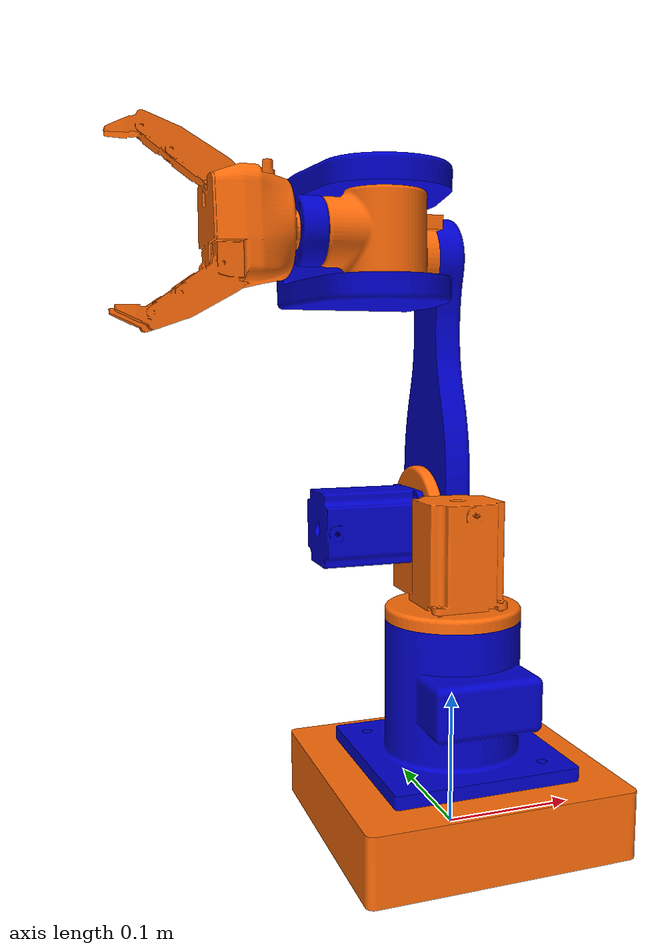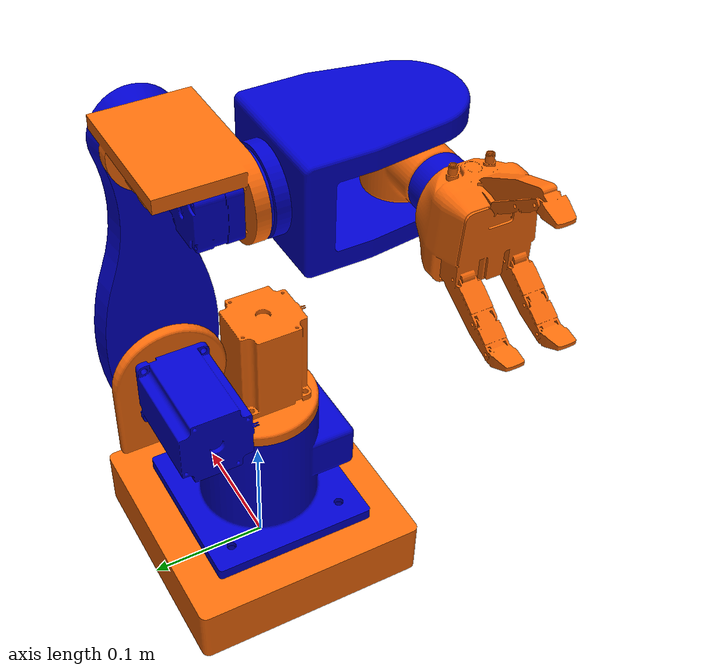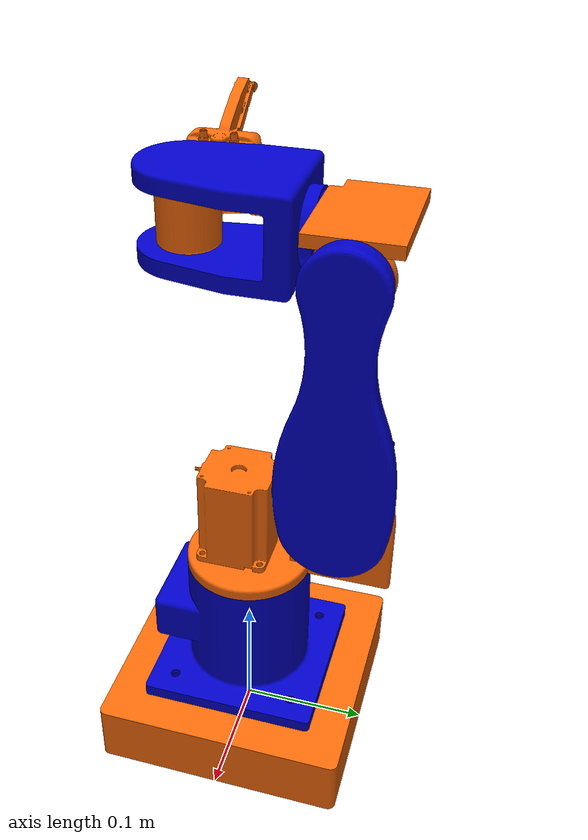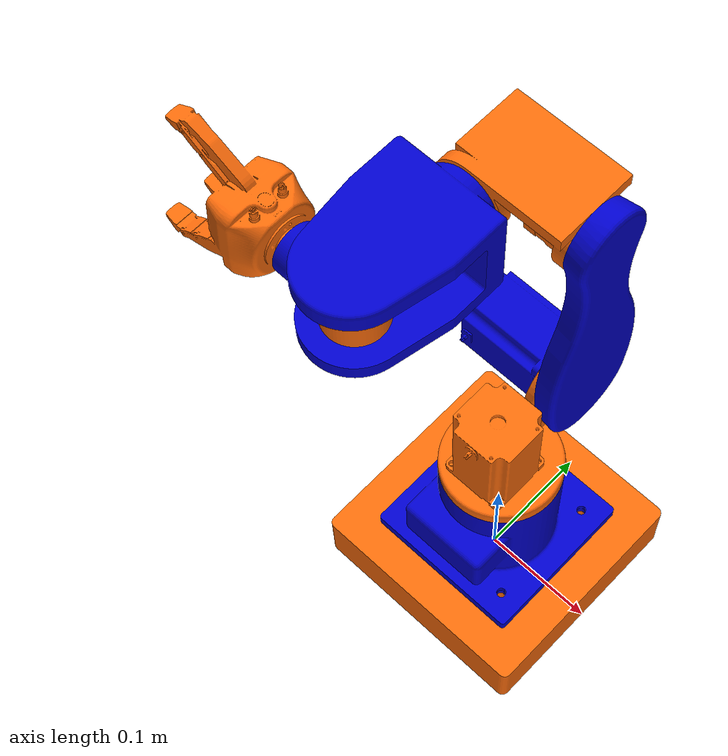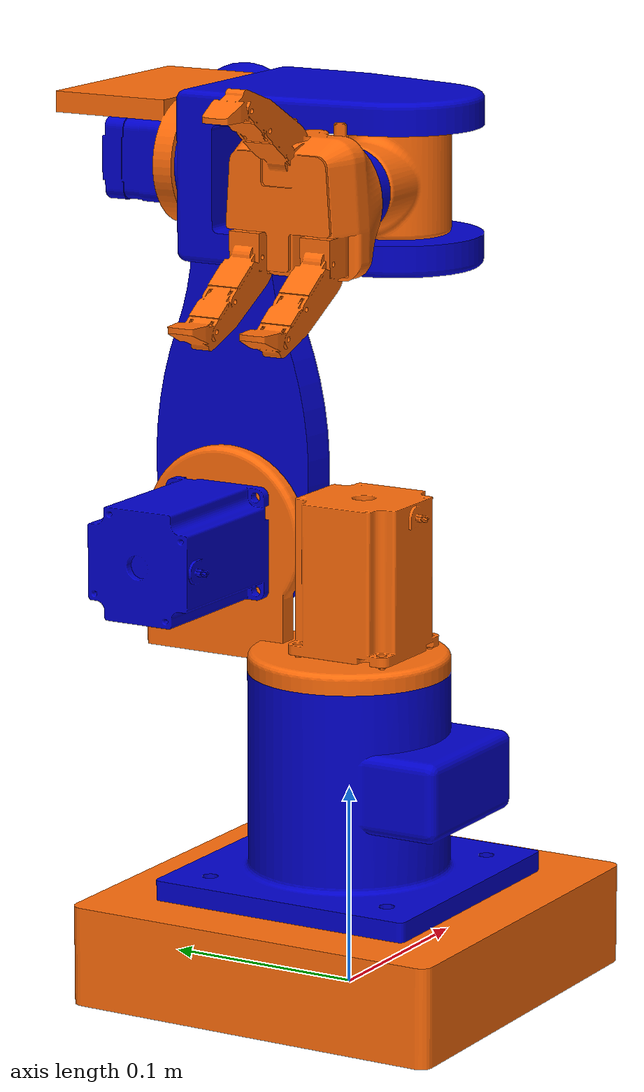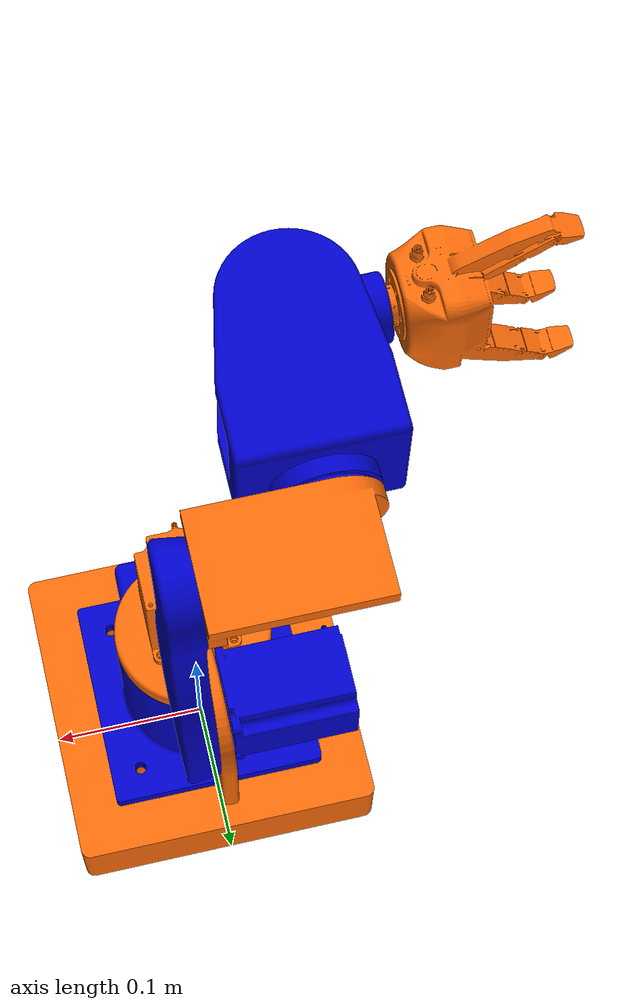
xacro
<?xml version="1.0" ?>
<robot name="modelo" xmlns:xacro="http://www.ros.org/wiki/xacro">

<xacro:include filename="$(find modelo_description)/urdf/materials.xacro" />
<xacro:include filename="$(find modelo_description)/urdf/transmission.xacro" />
<xacro:include filename="$(find modelo_description)/urdf/gazebo.xacro" />
<xacro:include filename="$(find modelo_description)/urdf/gazebo_properties.xacro" />
<link name="base_link">
  <inertial>
    <origin rpy="0 0 0" xyz="1.3695408551062038e-15 0.0 0.02497017641605957"/>
    <mass value="2.111798"/>
    <inertia ixx="0.007474" ixy="0" ixz="0" iyy="0.007474" iyz="0" izz="0.01407"/>
  </inertial>
  <visual>
    <origin rpy="0 0 0" xyz="0 0 0"/>
    <geometry>
      <mesh filename="package://modelo_description/meshes/base_link.stl" scale="0.001 0.001 0.001"/>
    </geometry>
    <material name="orange"/>
  </visual>
  <collision>
    <origin rpy="0 0 0" xyz="0 0 0"/>
    <geometry>
      <mesh filename="package://modelo_description/meshes/base_link.stl" scale="0.001 0.001 0.001"/>
    </geometry>
  </collision>
</link>

<link name="link_1">
  <inertial>
    <origin rpy="0 0 0" xyz="-5.047483736354417e-10 -0.004392610218652343 0.04871320580870557"/>
    <mass value="1.102554"/>
    <inertia ixx="0.002237" ixy="0" ixz="0" iyy="0.002034" iyz="0.00005466295" izz="0.001997"/>
  </inertial>
  <visual>
    <origin rpy="0 0 0" xyz="-0.0 -0.0 -0.05"/>
    <geometry>
      <mesh filename="package://modelo_description/meshes/link_1.stl" scale="0.001 0.001 0.001"/>
    </geometry>
    <material name="blue"/>
  </visual>
  <collision>
    <origin rpy="0 0 0" xyz="-0.0 -0.0 -0.05"/>
    <geometry>
      <mesh filename="package://modelo_description/meshes/link_1.stl" scale="0.001 0.001 0.001"/>
    </geometry>
  </collision>
</link>

<link name="link_2">
  <inertial>
    <origin rpy="0 0 0" xyz="-7.11936857127372e-09 0.032249951644533474 0.02724437131426541"/>
    <mass value="0.187945"/>
    <inertia ixx="0.0005193" ixy="0" ixz="0" iyy="0.0002309" iyz="0" izz="0.0004174"/>
  </inertial>
  <visual>
    <origin rpy="0 0 0" xyz="-0.0 -0.0 -0.157"/>
    <geometry>
      <mesh filename="package://modelo_description/meshes/link_2.stl" scale="0.001 0.001 0.001"/>
    </geometry>
    <material name="orange"/>
  </visual>
  <collision>
    <origin rpy="0 0 0" xyz="-0.0 -0.0 -0.157"/>
    <geometry>
      <mesh filename="package://modelo_description/meshes/link_2.stl" scale="0.001 0.001 0.001"/>
    </geometry>
  </collision>
</link>

<link name="link_3">
  <inertial>
    <origin rpy="0 0 0" xyz="0.01009125669144174 7.91033905045424e-16 0.0825602906581889"/>
    <origin rpy="0 0 0" xyz="0.01009125669144174 7.91033905045424e-16 0.0825602906581889"/>
    <mass value="0.187945"/>
    <inertia ixx="0.0005193" ixy="0" ixz="0" iyy="0.0002309" iyz="0" izz="0.0004174"/>
  </inertial>
  <visual>
    <origin rpy="0 0 0" xyz="-0.005 -0.07 -0.22"/>
    <geometry>
      <mesh filename="package://modelo_description/meshes/link_3.stl" scale="0.001 0.001 0.001"/>
    </geometry>
    <material name="blue"/>
  </visual>
  <collision>
    <origin rpy="0 0 0" xyz="-0.005 -0.07 -0.22"/>
    <geometry>
      <mesh filename="package://modelo_description/meshes/link_3.stl" scale="0.001 0.001 0.001"/>
    </geometry>
  </collision>
</link>

<link name="link_4">
  <inertial>
    <origin rpy="0 0 0" xyz="-0.04671583823132678 -0.006114743040103704 0.01335347313130314"/>
    <mass value="0.126071"/>
    <inertia ixx="0.000088940685" ixy="0" ixz="0.00000611033" iyy="0.0001763" iyz="0" izz="0.0001979"/>
  </inertial>
  <visual>
    <origin rpy="0 0 0" xyz="-0.005 -0.07 -0.42"/>
    <geometry>
      <mesh filename="package://modelo_description/meshes/link_4.stl" scale="0.001 0.001 0.001"/>
    </geometry>
    <material name="orange"/>
  </visual>
  <collision>
    <origin rpy="0 0 0" xyz="-0.005 -0.07 -0.42"/>
    <geometry>
      <mesh filename="package://modelo_description/meshes/link_4.stl" scale="0.001 0.001 0.001"/>
    </geometry>
  </collision>
</link>

<link name="link_5">
  <inertial>
    <origin rpy="0 0 0" xyz="-0.00044650849455328545 -0.05778279171036697 -2.7755575615628914e-16"/>
    <mass value="0.488452"/>
    <inertia ixx="0.001155" ixy="0" ixz="0" iyy="0.0007053" iyz="0" izz="0.001054"/>
  </inertial>
  <visual>
    <origin rpy="0 0 0" xyz="0.075 -0.035 -0.42"/>
    <geometry>
      <mesh filename="package://modelo_description/meshes/link_5.stl" scale="0.001 0.001 0.001"/>
    </geometry>
    <material name="blue"/>
  </visual>
  <collision>
    <origin rpy="0 0 0" xyz="0.075 -0.035 -0.42"/>
    <geometry>
      <mesh filename="package://modelo_description/meshes/link_5.stl" scale="0.001 0.001 0.001"/>
    </geometry>
  </collision>
</link>

<link name="link_6">
  <inertial>
    <origin rpy="0 0 0" xyz="-0.00683271348055893 -8.116383311621012e-06 0.024999999998279177"/>
    <mass value="0.0123861"/>
    <inertia ixx="0.000039194942" ixy="0" ixz="0" iyy="0.000058851989" iyz="0" izz="0.000056762072"/>
  </inertial>
  <visual>
    <origin rpy="0 0 0" xyz="0.07679 0.070058 -0.395"/>
    <geometry>
      <mesh filename="package://modelo_description/meshes/link_6.stl" scale="0.001 0.001 0.001"/>
    </geometry>
    <material name="orange"/>
  </visual>
  <collision>
    <origin rpy="0 0 0" xyz="0.07679 0.070058 -0.395"/>
    <geometry>
      <mesh filename="package://modelo_description/meshes/link_6.stl" scale="0.001 0.001 0.001"/>
    </geometry>
  </collision>
</link>

<link name="link_7">
  <inertial>
    <origin rpy="0 0 0" xyz="-0.008082563695983674 -9.665388285423626e-06 -3.3306690738754696e-16"/>
    <mass value="0.001457"/>
    <inertia ixx="0.000003254171" ixy="0" ixz="0" iyy="0.000001820288" iyz="0" izz="0.000001820286"/>
  </inertial>
  <visual>
    <origin rpy="0 0 0" xyz="0.11679 0.070105 -0.42"/>
    <geometry>
      <mesh filename="package://modelo_description/meshes/link_7.stl" scale="0.001 0.001 0.001"/>
    </geometry>
    <material name="blue"/>
  </visual>
  <collision>
    <origin rpy="0 0 0" xyz="0.11679 0.070105 -0.42"/>
    <geometry>
      <mesh filename="package://modelo_description/meshes/link_7.stl" scale="0.001 0.001 0.001"/>
    </geometry>
  </collision>
</link>

<link name="NEMA17_1">
  <inertial>
    <origin rpy="0 0 0" xyz="-0.017979645478686204 9.8483682348105e-08 -7.507921800931072e-08"/>
    <mass value="0.37807"/>
    <inertia ixx="0.000088375151" ixy="0" ixz="0" iyy="0.000080538853" iyz="0" izz="0.000080539183"/>
  </inertial>
  <visual>
    <origin rpy="0 0 0" xyz="0.005 -0.07 -0.42"/>
    <geometry>
      <mesh filename="package://modelo_description/meshes/NEMA17_1.stl" scale="0.001 0.001 0.001"/>
    </geometry>
    <material name="orange"/>
  </visual>
  <collision>
    <origin rpy="0 0 0" xyz="0.005 -0.07 -0.42"/>
    <geometry>
      <mesh filename="package://modelo_description/meshes/NEMA17_1.stl" scale="0.001 0.001 0.001"/>
    </geometry>
  </collision>
</link>

<link name="NEMA17_2">
  <inertial>
    <origin rpy="0 0 0" xyz="4.619561776164627e-08 0.01797957811301021 -3.299982803683932e-08"/>
    <mass value="0.37807"/>
    <inertia ixx="0.000088375151" ixy="0" ixz="0" iyy="0.000080538853" iyz="0" izz="0.000080539183"/>
  </inertial>
  <visual>
    <origin rpy="0 0 0" xyz="0.075 -0.045 -0.42"/>
    <geometry>
      <mesh filename="package://modelo_description/meshes/NEMA17_2.stl" scale="0.001 0.001 0.001"/>
    </geometry>
    <material name="blue"/>
  </visual>
  <collision>
    <origin rpy="0 0 0" xyz="0.075 -0.045 -0.42"/>
    <geometry>
      <mesh filename="package://modelo_description/meshes/NEMA17_2.stl" scale="0.001 0.001 0.001"/>
    </geometry>
  </collision>
</link>

<link name="NEMA23_1">
  <inertial>
    <origin rpy="0 0 0" xyz="2.216087647950953e-08 -2.5678396917215573e-05 0.03903179757969141"/>
    <mass value="1.71147"/>
    <inertia ixx="0.00124" ixy="0" ixz="0" iyy="0.001239" iyz="0.000001398796" izz="0.0007837"/>
  </inertial>
  <visual>
    <origin rpy="0 0 0" xyz="-0.0 0.008236 -0.17"/>
    <geometry>
      <mesh filename="package://modelo_description/meshes/NEMA23_1.stl" scale="0.001 0.001 0.001"/>
    </geometry>
    <material name="orange"/>
  </visual>
  <collision>
    <origin rpy="0 0 0" xyz="-0.0 0.008236 -0.17"/>
    <geometry>
      <mesh filename="package://modelo_description/meshes/NEMA23_1.stl" scale="0.001 0.001 0.001"/>
    </geometry>
  </collision>
</link>

<link name="NEMA23_2">
  <inertial>
    <origin rpy="0 0 0" xyz="-0.03903179757969144 -2.5678396917222512e-05 2.2160876439469845e-08"/>
    <mass value="1.71147"/>
    <inertia ixx="0.00124" ixy="0" ixz="0" iyy="0.001239" iyz="0.000001398796" izz="0.0007837"/>
  </inertial>
  <visual>
    <origin rpy="0 0 0" xyz="0.005 -0.07 -0.22"/>
    <geometry>
      <mesh filename="package://modelo_description/meshes/NEMA23_2.stl" scale="0.001 0.001 0.001"/>
    </geometry>
    <material name="blue"/>
  </visual>
  <collision>
    <origin rpy="0 0 0" xyz="0.005 -0.07 -0.22"/>
    <geometry>
      <mesh filename="package://modelo_description/meshes/NEMA23_2.stl" scale="0.001 0.001 0.001"/>
    </geometry>
  </collision>
</link>

<link name="garra">
  <inertial>
    <origin rpy="0 0 0" xyz="-0.03590834296259646 -3.6387512495197893e-05 -0.00275221699917072"/>
    <mass value="0.0195293"/>
    <inertia ixx="0.0001552" ixy="0" ixz="0" iyy="0.0001843" iyz="0" izz="0.0001331"/>
  </inertial>
  <visual>
    <origin rpy="0 0 0" xyz="0.13179 0.070123 -0.42"/>
    <geometry>
      <mesh filename="package://modelo_description/meshes/garra.stl" scale="0.001 0.001 0.001"/>
    </geometry>
    <material name="orange"/>
  </visual>
  <collision>
    <origin rpy="0 0 0" xyz="0.13179 0.070123 -0.42"/>
    <geometry>
      <mesh filename="package://modelo_description/meshes/garra.stl" scale="0.001 0.001 0.001"/>
    </geometry>
  </collision>
</link>

<link name="world"/>
<joint name="fixed" type="fixed">
  <parent link="world"/>
  <child link="base_link"/>
</joint>

<joint name="Rigid1" type="fixed">
  <origin rpy="0 0 0" xyz="0.0 0.0 0.05"/>
  <parent link="base_link"/>
  <child link="link_1"/>
</joint>

<joint name="rev2" type="continuous">
  <origin rpy="0 0 0" xyz="0.0 0.0 0.107"/>
  <parent link="link_1"/>
  <child link="link_2"/>
  <axis xyz="0 0 -1"/>
</joint>

<joint name="rev3" type="revolute">
  <origin rpy="0 0 0" xyz="0.005 0.07 0.063"/>
  <parent link="link_2"/>
  <child link="link_3"/>
  <axis xyz="-1 0 0"/>
  <limit effort="100" lower="0.0" upper="1.570796" velocity="10"/>
</joint>

<joint name="rev4" type="revolute">
  <origin rpy="0 0 0" xyz="0.0 0.0 0.2"/>
  <parent link="link_3"/>
  <child link="link_4"/>
  <axis xyz="-1 0 0"/>
  <limit effort="100" lower="0.0" upper="3.141593" velocity="10"/>
</joint>

<joint name="rev5" type="continuous">
  <origin rpy="0 0 0" xyz="-0.08 -0.035 0.0"/>
  <parent link="link_4"/>
  <child link="link_5"/>
  <axis xyz="0 1 0"/>
</joint>

<joint name="rev6" type="revolute">
  <origin rpy="0 0 0" xyz="-0.00179 -0.105058 -0.025"/>
  <parent link="link_5"/>
  <child link="link_6"/>
  <axis xyz="0 0 -1"/>
  <limit effort="100" lower="-3.141593" upper="0.0" velocity="10"/>
</joint>

<joint name="rev7" type="continuous">
  <origin rpy="0 0 0" xyz="-0.04 -4.7e-05 0.025"/>
  <parent link="link_6"/>
  <child link="link_7"/>
  <axis xyz="1 0 0"/>
</joint>

<joint name="Rigid8" type="fixed">
  <origin rpy="0 0 0" xyz="-0.01 0.0 0.0"/>
  <parent link="link_4"/>
  <child link="NEMA17_1"/>
</joint>

<joint name="Rigid9" type="fixed">
  <origin rpy="0 0 0" xyz="-0.08 -0.025 0.0"/>
  <parent link="link_4"/>
  <child link="NEMA17_2"/>
</joint>

<joint name="Rigid10" type="fixed">
  <origin rpy="0 0 0" xyz="0.0 -0.008236 0.013"/>
  <parent link="link_2"/>
  <child link="NEMA23_1"/>
</joint>

<joint name="Rigid11" type="fixed">
  <origin rpy="0 0 0" xyz="-0.005 0.07 0.063"/>
  <parent link="link_2"/>
  <child link="NEMA23_2"/>
</joint>

<joint name="Rigid12" type="fixed">
  <origin rpy="0 0 0" xyz="-0.015 -1.8e-05 0.0"/>
  <parent link="link_7"/>
  <child link="garra"/>
</joint>

  <gazebo>
    <plugin name="gazebo_ros_control" filename="libgazebo_ros_control.so">
      <robotNamespace>/modelo</robotNamespace>
    </plugin>
  </gazebo>

</robot>

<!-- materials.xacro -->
<robot name="modelo" xmlns:xacro="http://www.ros.org/wiki/xacro" >

  <material name="silver">
    <color rgba="0.700 0.700 0.700 1.000"/>
  </material>

  <material name="black">
    <color rgba="0.0 0.0 0.0 1.0"/>
  </material>

  <material name="blue">
    <color rgba="0.0 0.0 0.8 1.0"/>
  </material>

  <material name="green">
    <color rgba="0.0 0.8 0.0 1.0"/>
  </material>

  <material name="grey">
    <color rgba="0.2 0.2 0.2 1.0"/>
  </material>

  <material name="orange">
    <color rgba="${255/255} ${108/255} ${10/255} 1.0"/>
  </material>

  <material name="brown">
    <color rgba="${222/255} ${207/255} ${195/255} 1.0"/>
  </material>

  <material name="red">
    <color rgba="0.8 0.0 0.0 1.0"/>
  </material>

  <material name="white">
    <color rgba="1.0 1.0 1.0 1.0"/>
  </material>

</robot>

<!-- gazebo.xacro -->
<robot name="modelo" xmlns:xacro="http://www.ros.org/wiki/xacro" >

<xacro:property name="body_color" value="Gazebo/Silver" />

<gazebo>
  <plugin filename="libgazebo_ros_control.so" name="control"/>
</gazebo>
<gazebo reference="base_link">
  <material>${body_color}</material>
  <mu1>0.2</mu1>
  <mu2>0.2</mu2>
  <selfCollide>true</selfCollide>
  <dynamics damping="1" friction="1"/>
  <gravity>true</gravity>
</gazebo>

<gazebo reference="link_1">
  <material>${body_color}</material>
  <mu1>0.2</mu1>
  <mu2>0.2</mu2>
  <selfCollide>true</selfCollide>
  <dynamics damping="1" friction="1"/>
</gazebo>

<gazebo reference="link_2">
  <material>${body_color}</material>
  <mu1>0.2</mu1>
  <mu2>0.2</mu2>
  <selfCollide>true</selfCollide>
  <dynamics damping="1" friction="1"/>
</gazebo>

<gazebo reference="link_3">
  <material>${body_color}</material>
  <mu1>0.2</mu1>
  <mu2>0.2</mu2>
  <selfCollide>true</selfCollide>
  <dynamics damping="1" friction="1"/>
</gazebo>

<gazebo reference="link_4">
  <material>${body_color}</material>
  <mu1>0.2</mu1>
  <mu2>0.2</mu2>
  <selfCollide>true</selfCollide>
  <dynamics damping="1" friction="1"/>
</gazebo>

<gazebo reference="link_5">
  <material>${body_color}</material>
  <mu1>0.2</mu1>
  <mu2>0.2</mu2>
  <selfCollide>true</selfCollide>
  <dynamics damping="1" friction="1"/>
</gazebo>

<gazebo reference="link_6">
  <material>${body_color}</material>
  <mu1>0.2</mu1>
  <mu2>0.2</mu2>
  <selfCollide>true</selfCollide>
  <dynamics damping="1" friction="1"/>
</gazebo>

<gazebo reference="link_7">
  <material>${body_color}</material>
  <mu1>0.2</mu1>
  <mu2>0.2</mu2>
  <selfCollide>true</selfCollide>
  <dynamics damping="1" friction="1"/>
</gazebo>

<gazebo reference="NEMA17_1">
  <material>${body_color}</material>
  <mu1>0.2</mu1>
  <mu2>0.2</mu2>
  <selfCollide>true</selfCollide>
  <dynamics damping="1" friction="1"/>
</gazebo>

<gazebo reference="NEMA17_2">
  <material>${body_color}</material>
  <mu1>0.2</mu1>
  <mu2>0.2</mu2>
  <selfCollide>true</selfCollide>
  <dynamics damping="1" friction="1"/>
</gazebo>

<gazebo reference="NEMA23_1">
  <material>${body_color}</material>
  <mu1>0.2</mu1>
  <mu2>0.2</mu2>
  <selfCollide>true</selfCollide>
  <dynamics damping="1" friction="1"/>
</gazebo>

<gazebo reference="NEMA23_2">
  <material>${body_color}</material>
  <mu1>0.2</mu1>
  <mu2>0.2</mu2>
  <selfCollide>true</selfCollide>
  <dynamics damping="1" friction="1"/>
</gazebo>

<gazebo reference="garra">
  <material>${body_color}</material>
  <mu1>0.2</mu1>
  <mu2>0.2</mu2>
  <selfCollide>true</selfCollide>
  <dynamics damping="1" friction="1"/>
</gazebo>

</robot>
